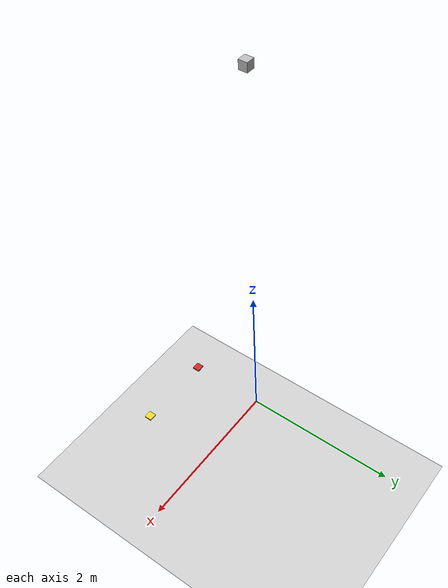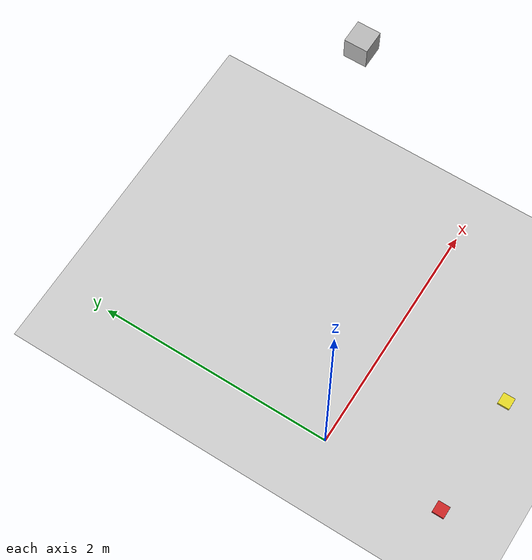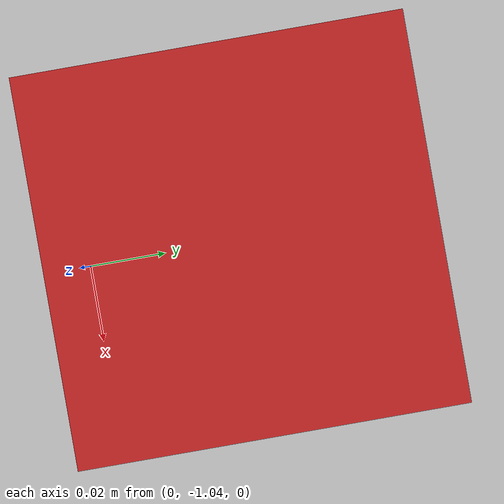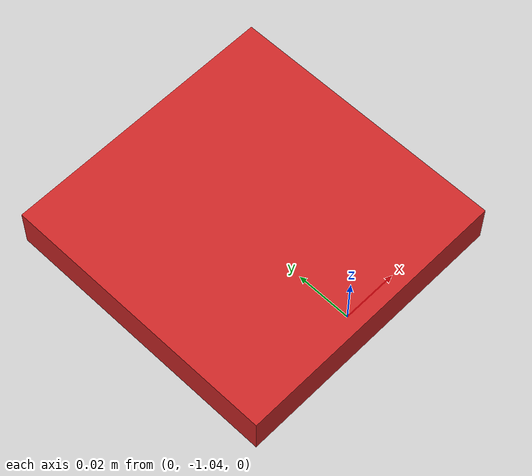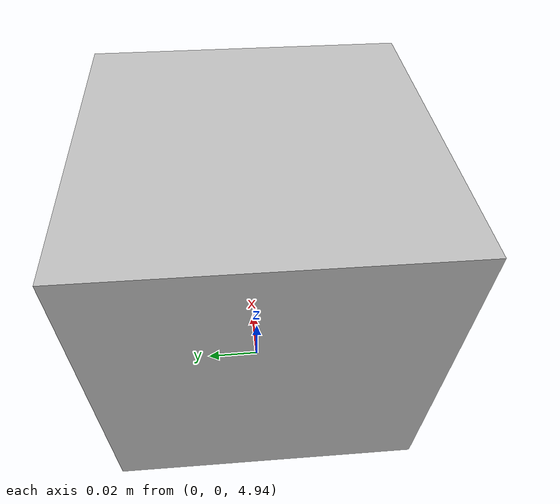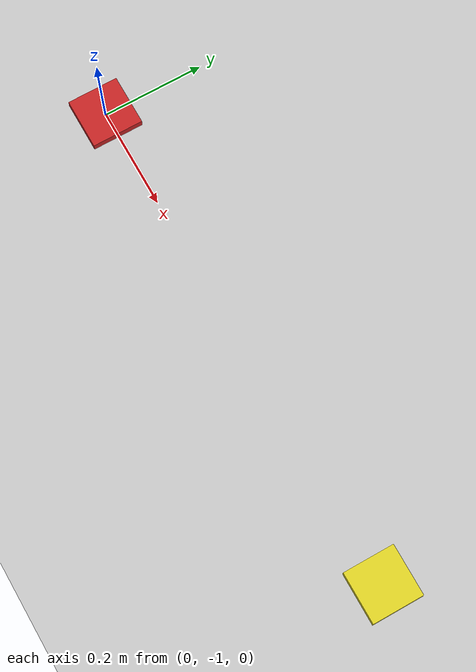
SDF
<?xml version="1.0" ?>
<sdf version="1.5">
  <world name="default">
    <!-- A global light source -->
    <include>
      <uri>model://sun</uri>
    </include>
    <!-- A ground plane -->
    <include>
      <uri>model://ground_plane</uri>
    </include>

    <model name="fiducial_camera">
      <pose>0.0 0.0 5 0 1.57 0</pose>
      <static>true</static>
      <link name="link">
        <collision name="collision">
          <geometry>
            <box>
              <size>0.1 0.1 0.1</size>
            </box>
          </geometry>
        </collision>
        <visual name="visual">
          <geometry>
            <box>
              <size>0.1 0.1 0.1</size>
            </box>
          </geometry>
        </visual>
        <sensor name="camera" type="camera">
          <camera>
            <horizontal_fov>1.047</horizontal_fov>
            <image>
              <width>640</width>
              <height>480</height>
            </image>
            <clip>
              <near>0.1</near>
              <far>100</far>
            </clip>
          </camera>
          <always_on>1</always_on>
          <update_rate>10</update_rate>
          <visualize>true</visualize>
          <plugin name="fiducial_camera" filename="libFiducialCameraPlugin.so">
              <fiducial>fiducial_01</fiducial>
              <fiducial>fiducial_02</fiducial>
          </plugin>
        </sensor>
      </link>
    </model>

    <model name="fiducial_01">
      <pose>0.0 -1.0 0.005 0 0 0</pose>
      <link name="link">
        <inertial>
          <mass>0.1</mass>
          <inertia>
            <ixx>0.000086</ixx>
            <iyy>0.000086</iyy>
            <izz>0.000164</izz>
          </inertia>
        </inertial>
        <collision name="collision">
          <geometry>
            <box>
              <size>0.1 0.1 0.02</size>
            </box>
          </geometry>
        </collision>
        <visual name="visual">
          <geometry>
            <box>
              <size>0.1 0.1 0.02</size>
            </box>
          </geometry>
          <material>
            <script>
              <name>Gazebo/Red</name>
            </script>
          </material>
        </visual>
      </link>
    </model>

    <model name="fiducial_02">
      <pose>1.0 -1.0 0.005 0 0 0</pose>
      <link name="link">
        <inertial>
          <mass>0.1</mass>
          <inertia>
            <ixx>0.000086</ixx>
            <iyy>0.000086</iyy>
            <izz>0.000164</izz>
          </inertia>
        </inertial>
        <collision name="collision">
          <geometry>
            <box>
              <size>0.1 0.1 0.02</size>
            </box>
          </geometry>
        </collision>
        <visual name="visual">
          <geometry>
            <box>
              <size>0.1 0.1 0.02</size>
            </box>
          </geometry>
          <material>
            <script>
              <name>Gazebo/Yellow</name>
            </script>
          </material>
        </visual>
      </link>
    </model>

  </world>
</sdf>
